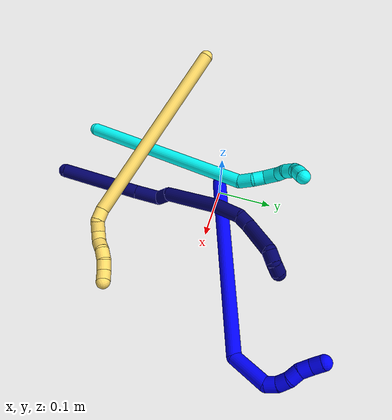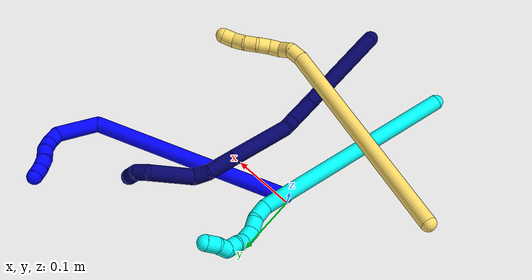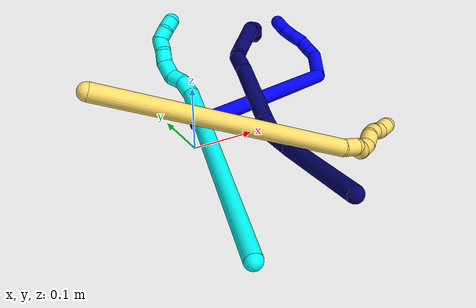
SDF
<sdf version="1.7">
 <world name="default">
  <model name="1">
   <static>0</static>
   <link name="1">
    <collision name="collision-cylinder-e_1_1_4">
     <pose>0.090109 0.019213 0.137033 -0.139298 0.577221 -0.041419</pose>
     <geometry><cylinder><radius>0.0125</radius><length>0.330253</length></cylinder></geometry>
     <surface>
      <friction><ode><mu>1.16</mu><mu2>1.16</mu2><slip1>0</slip1><slip2>0</slip2></ode></friction>
      <contact><ode><kp>1e+06</kp><kd>1</kd><max_vel>0</max_vel><min_depth>0.001</min_depth></ode></contact>
     </surface>
    </collision>
    <visual name="visual-cylinder-e_1_1_4">
     <pose>0.090109 0.019213 0.137033 -0.139298 0.577221 -0.041419</pose>
     <geometry><cylinder><radius>0.0125</radius><length>0.330253</length></cylinder></geometry>
     <material><ambient>0 0 1 1</ambient></material>
    </visual>
    <collision name="collision-cylinder-e_2_4_5">
     <pose>0.20441 0.020846 0.29007 0.832246 0.794103 0.366465</pose>
     <geometry><cylinder><radius>0.0125</radius><length>0.067836</length></cylinder></geometry>
     <surface>
      <friction><ode><mu>1.16</mu><mu2>1.16</mu2><slip1>0</slip1><slip2>0</slip2></ode></friction>
      <contact><ode><kp>1e+06</kp><kd>1</kd><max_vel>0</max_vel><min_depth>0.001</min_depth></ode></contact>
     </surface>
    </collision>
    <visual name="visual-cylinder-e_2_4_5">
     <pose>0.20441 0.020846 0.29007 0.832246 0.794103 0.366465</pose>
     <geometry><cylinder><radius>0.0125</radius><length>0.067836</length></cylinder></geometry>
     <material><ambient>0 0 1 1</ambient></material>
    </visual>
    <collision name="collision-cylinder-e_3_5_6">
     <pose>0.234418 -0.005174 0.304811 1.7195 0.598228 0.687575</pose>
     <geometry><cylinder><radius>0.0125</radius><length>0.020657</length></cylinder></geometry>
     <surface>
      <friction><ode><mu>1.16</mu><mu2>1.16</mu2><slip1>0</slip1><slip2>0</slip2></ode></friction>
      <contact><ode><kp>1e+06</kp><kd>1</kd><max_vel>0</max_vel><min_depth>0.001</min_depth></ode></contact>
     </surface>
    </collision>
    <visual name="visual-cylinder-e_3_5_6">
     <pose>0.234418 -0.005174 0.304811 1.7195 0.598228 0.687575</pose>
     <geometry><cylinder><radius>0.0125</radius><length>0.020657</length></cylinder></geometry>
     <material><ambient>0 0 1 1</ambient></material>
    </visual>
    <collision name="collision-cylinder-e_4_6_7">
     <pose>0.245725 -0.02079 0.298716 2.16326 0.56563 0.999417</pose>
     <geometry><cylinder><radius>0.0125</radius><length>0.02049</length></cylinder></geometry>
     <surface>
      <friction><ode><mu>1.16</mu><mu2>1.16</mu2><slip1>0</slip1><slip2>0</slip2></ode></friction>
      <contact><ode><kp>1e+06</kp><kd>1</kd><max_vel>0</max_vel><min_depth>0.001</min_depth></ode></contact>
     </surface>
    </collision>
    <visual name="visual-cylinder-e_4_6_7">
     <pose>0.245725 -0.02079 0.298716 2.16326 0.56563 0.999417</pose>
     <geometry><cylinder><radius>0.0125</radius><length>0.02049</length></cylinder></geometry>
     <material><ambient>0 0 1 1</ambient></material>
    </visual>
    <collision name="collision-cylinder-e_5_7_8">
     <pose>0.253654 -0.035537 0.287605 2.26327 0.242904 0.508404</pose>
     <geometry><cylinder><radius>0.0125</radius><length>0.020272</length></cylinder></geometry>
     <surface>
      <friction><ode><mu>1.16</mu><mu2>1.16</mu2><slip1>0</slip1><slip2>0</slip2></ode></friction>
      <contact><ode><kp>1e+06</kp><kd>1</kd><max_vel>0</max_vel><min_depth>0.001</min_depth></ode></contact>
     </surface>
    </collision>
    <visual name="visual-cylinder-e_5_7_8">
     <pose>0.253654 -0.035537 0.287605 2.26327 0.242904 0.508404</pose>
     <geometry><cylinder><radius>0.0125</radius><length>0.020272</length></cylinder></geometry>
     <material><ambient>0 0 1 1</ambient></material>
    </visual>
    <collision name="collision-cylinder-e_6_8_9">
     <pose>0.260055 -0.05172 0.277571 1.98182 0.39932 0.599274</pose>
     <geometry><cylinder><radius>0.0125</radius><length>0.020388</length></cylinder></geometry>
     <surface>
      <friction><ode><mu>1.16</mu><mu2>1.16</mu2><slip1>0</slip1><slip2>0</slip2></ode></friction>
      <contact><ode><kp>1e+06</kp><kd>1</kd><max_vel>0</max_vel><min_depth>0.001</min_depth></ode></contact>
     </surface>
    </collision>
    <visual name="visual-cylinder-e_6_8_9">
     <pose>0.260055 -0.05172 0.277571 1.98182 0.39932 0.599274</pose>
     <geometry><cylinder><radius>0.0125</radius><length>0.020388</length></cylinder></geometry>
     <material><ambient>0 0 1 1</ambient></material>
    </visual>
    <collision name="collision-cylinder-e_7_9_2">
     <pose>0.269637 -0.067724 0.269972 2.0505 0.593061 0.932674</pose>
     <geometry><cylinder><radius>0.0125</radius><length>0.020104</length></cylinder></geometry>
     <surface>
      <friction><ode><mu>1.16</mu><mu2>1.16</mu2><slip1>0</slip1><slip2>0</slip2></ode></friction>
      <contact><ode><kp>1e+06</kp><kd>1</kd><max_vel>0</max_vel><min_depth>0.001</min_depth></ode></contact>
     </surface>
    </collision>
    <visual name="visual-cylinder-e_7_9_2">
     <pose>0.269637 -0.067724 0.269972 2.0505 0.593061 0.932674</pose>
     <geometry><cylinder><radius>0.0125</radius><length>0.020104</length></cylinder></geometry>
     <material><ambient>0 0 1 1</ambient></material>
    </visual>
    <collision name="collision-sphere-2">
     <pose>0.275255 -0.075119 0.266125 0 -0 0</pose>
     <geometry><sphere><radius>0.0125</radius></sphere></geometry>
     <surface>
      <friction><ode><mu>1.16</mu><mu2>1.16</mu2><slip1>0</slip1><slip2>0</slip2></ode></friction>
      <contact><ode><kp>1e+06</kp><kd>1</kd><max_vel>0</max_vel><min_depth>0.001</min_depth></ode></contact>
     </surface>
    </collision>
    <visual name="visual-sphere-2">
     <pose>0.275255 -0.075119 0.266125 0 -0 0</pose>
     <geometry><sphere><radius>0.0125</radius></sphere></geometry>
     <material><ambient>0 0 1 1</ambient></material>
    </visual>
    <collision name="collision-sphere-9">
     <pose>0.264019 -0.060329 0.273819 0 -0 0</pose>
     <geometry><sphere><radius>0.0125</radius></sphere></geometry>
     <surface>
      <friction><ode><mu>1.16</mu><mu2>1.16</mu2><slip1>0</slip1><slip2>0</slip2></ode></friction>
      <contact><ode><kp>1e+06</kp><kd>1</kd><max_vel>0</max_vel><min_depth>0.001</min_depth></ode></contact>
     </surface>
    </collision>
    <visual name="visual-sphere-9">
     <pose>0.264019 -0.060329 0.273819 0 -0 0</pose>
     <geometry><sphere><radius>0.0125</radius></sphere></geometry>
     <material><ambient>0 0 1 1</ambient></material>
    </visual>
    <collision name="collision-sphere-4">
     <pose>0.180218 0.038426 0.274066 0 -0 0</pose>
     <geometry><sphere><radius>0.0125</radius></sphere></geometry>
     <surface>
      <friction><ode><mu>1.16</mu><mu2>1.16</mu2><slip1>0</slip1><slip2>0</slip2></ode></friction>
      <contact><ode><kp>1e+06</kp><kd>1</kd><max_vel>0</max_vel><min_depth>0.001</min_depth></ode></contact>
     </surface>
    </collision>
    <visual name="visual-sphere-4">
     <pose>0.180218 0.038426 0.274066 0 -0 0</pose>
     <geometry><sphere><radius>0.0125</radius></sphere></geometry>
     <material><ambient>0 0 1 1</ambient></material>
    </visual>
    <collision name="collision-sphere-1">
     <geometry><sphere><radius>0.0125</radius></sphere></geometry>
     <surface>
      <friction><ode><mu>1.16</mu><mu2>1.16</mu2><slip1>0</slip1><slip2>0</slip2></ode></friction>
      <contact><ode><kp>1e+06</kp><kd>1</kd><max_vel>0</max_vel><min_depth>0.001</min_depth></ode></contact>
     </surface>
    </collision>
    <visual name="visual-sphere-1">
     <geometry><sphere><radius>0.0125</radius></sphere></geometry>
     <material><ambient>0 0 1 1</ambient></material>
    </visual>
    <collision name="collision-sphere-8">
     <pose>0.256092 -0.04311 0.281324 0 -0 0</pose>
     <geometry><sphere><radius>0.0125</radius></sphere></geometry>
     <surface>
      <friction><ode><mu>1.16</mu><mu2>1.16</mu2><slip1>0</slip1><slip2>0</slip2></ode></friction>
      <contact><ode><kp>1e+06</kp><kd>1</kd><max_vel>0</max_vel><min_depth>0.001</min_depth></ode></contact>
     </surface>
    </collision>
    <visual name="visual-sphere-8">
     <pose>0.256092 -0.04311 0.281324 0 -0 0</pose>
     <geometry><sphere><radius>0.0125</radius></sphere></geometry>
     <material><ambient>0 0 1 1</ambient></material>
    </visual>
    <collision name="collision-sphere-5">
     <pose>0.228601 0.003267 0.306075 0 -0 0</pose>
     <geometry><sphere><radius>0.0125</radius></sphere></geometry>
     <surface>
      <friction><ode><mu>1.16</mu><mu2>1.16</mu2><slip1>0</slip1><slip2>0</slip2></ode></friction>
      <contact><ode><kp>1e+06</kp><kd>1</kd><max_vel>0</max_vel><min_depth>0.001</min_depth></ode></contact>
     </surface>
    </collision>
    <visual name="visual-sphere-5">
     <pose>0.228601 0.003267 0.306075 0 -0 0</pose>
     <geometry><sphere><radius>0.0125</radius></sphere></geometry>
     <material><ambient>0 0 1 1</ambient></material>
    </visual>
    <collision name="collision-sphere-6">
     <pose>0.240235 -0.013615 0.303546 0 -0 0</pose>
     <geometry><sphere><radius>0.0125</radius></sphere></geometry>
     <surface>
      <friction><ode><mu>1.16</mu><mu2>1.16</mu2><slip1>0</slip1><slip2>0</slip2></ode></friction>
      <contact><ode><kp>1e+06</kp><kd>1</kd><max_vel>0</max_vel><min_depth>0.001</min_depth></ode></contact>
     </surface>
    </collision>
    <visual name="visual-sphere-6">
     <pose>0.240235 -0.013615 0.303546 0 -0 0</pose>
     <geometry><sphere><radius>0.0125</radius></sphere></geometry>
     <material><ambient>0 0 1 1</ambient></material>
    </visual>
    <collision name="collision-sphere-7">
     <pose>0.251216 -0.027965 0.293887 0 -0 0</pose>
     <geometry><sphere><radius>0.0125</radius></sphere></geometry>
     <surface>
      <friction><ode><mu>1.16</mu><mu2>1.16</mu2><slip1>0</slip1><slip2>0</slip2></ode></friction>
      <contact><ode><kp>1e+06</kp><kd>1</kd><max_vel>0</max_vel><min_depth>0.001</min_depth></ode></contact>
     </surface>
    </collision>
    <visual name="visual-sphere-7">
     <pose>0.251216 -0.027965 0.293887 0 -0 0</pose>
     <geometry><sphere><radius>0.0125</radius></sphere></geometry>
     <material><ambient>0 0 1 1</ambient></material>
    </visual>
    <inertial>
     <pose>0.138735 0.00818 0.188534 0 -0 0</pose>
     <mass>0.5</mass>
     <inertia>
      <ixx>0.002476</ixx>
      <ixy>0</ixy>
      <ixz>0</ixz>
      <iyy>0.002917</iyy>
      <iyz>0</iyz>
      <izz>-0.001978</izz>
     </inertia>
    </inertial>
   </link>
   <pose>0.006616 -0.000606 0.041403 3.02345 -0.885798 0.560304</pose>
  </model>
  <model name="3">
   <static>0</static>
   <link name="3">
    <collision name="collision-cylinder-e_1_1_4">
     <pose>0.001794 0.045389 -0.165852 -2.87446 0.010436 -0.077627</pose>
     <geometry><cylinder><radius>0.0125</radius><length>0.34392</length></cylinder></geometry>
     <surface>
      <friction><ode><mu>1.16</mu><mu2>1.16</mu2><slip1>0</slip1><slip2>0</slip2></ode></friction>
      <contact><ode><kp>1e+06</kp><kd>1</kd><max_vel>0</max_vel><min_depth>0.001</min_depth></ode></contact>
     </surface>
    </collision>
    <visual name="visual-cylinder-e_1_1_4">
     <pose>0.001794 0.045389 -0.165852 -2.87446 0.010436 -0.077627</pose>
     <geometry><cylinder><radius>0.0125</radius><length>0.34392</length></cylinder></geometry>
     <material><ambient>0.003922 1 0.996078 1</ambient></material>
    </visual>
    <collision name="collision-cylinder-e_2_4_5">
     <pose>0.000135 0.098575 -0.342297 -2.50716 -0.256774 0.74931</pose>
     <geometry><cylinder><radius>0.0125</radius><length>0.027199</length></cylinder></geometry>
     <surface>
      <friction><ode><mu>1.16</mu><mu2>1.16</mu2><slip1>0</slip1><slip2>0</slip2></ode></friction>
      <contact><ode><kp>1e+06</kp><kd>1</kd><max_vel>0</max_vel><min_depth>0.001</min_depth></ode></contact>
     </surface>
    </collision>
    <visual name="visual-cylinder-e_2_4_5">
     <pose>0.000135 0.098575 -0.342297 -2.50716 -0.256774 0.74931</pose>
     <geometry><cylinder><radius>0.0125</radius><length>0.027199</length></cylinder></geometry>
     <material><ambient>0.003922 1 0.996078 1</ambient></material>
    </visual>
    <collision name="collision-cylinder-e_3_5_6">
     <pose>-0.009731 0.110039 -0.360492 -2.69192 -0.649716 1.94851</pose>
     <geometry><cylinder><radius>0.0125</radius><length>0.021198</length></cylinder></geometry>
     <surface>
      <friction><ode><mu>1.16</mu><mu2>1.16</mu2><slip1>0</slip1><slip2>0</slip2></ode></friction>
      <contact><ode><kp>1e+06</kp><kd>1</kd><max_vel>0</max_vel><min_depth>0.001</min_depth></ode></contact>
     </surface>
    </collision>
    <visual name="visual-cylinder-e_3_5_6">
     <pose>-0.009731 0.110039 -0.360492 -2.69192 -0.649716 1.94851</pose>
     <geometry><cylinder><radius>0.0125</radius><length>0.021198</length></cylinder></geometry>
     <material><ambient>0.003922 1 0.996078 1</ambient></material>
    </visual>
    <collision name="collision-cylinder-e_4_6_7">
     <pose>-0.018675 0.123045 -0.377662 -2.36848 -0.187204 0.453341</pose>
     <geometry><cylinder><radius>0.0125</radius><length>0.027216</length></cylinder></geometry>
     <surface>
      <friction><ode><mu>1.16</mu><mu2>1.16</mu2><slip1>0</slip1><slip2>0</slip2></ode></friction>
      <contact><ode><kp>1e+06</kp><kd>1</kd><max_vel>0</max_vel><min_depth>0.001</min_depth></ode></contact>
     </surface>
    </collision>
    <visual name="visual-cylinder-e_4_6_7">
     <pose>-0.018675 0.123045 -0.377662 -2.36848 -0.187204 0.453341</pose>
     <geometry><cylinder><radius>0.0125</radius><length>0.027216</length></cylinder></geometry>
     <material><ambient>0.003922 1 0.996078 1</ambient></material>
    </visual>
    <collision name="collision-cylinder-e_5_7_8">
     <pose>-0.01962 0.141028 -0.392069 -2.08094 0.158905 -0.269925</pose>
     <geometry><cylinder><radius>0.0125</radius><length>0.020067</length></cylinder></geometry>
     <surface>
      <friction><ode><mu>1.16</mu><mu2>1.16</mu2><slip1>0</slip1><slip2>0</slip2></ode></friction>
      <contact><ode><kp>1e+06</kp><kd>1</kd><max_vel>0</max_vel><min_depth>0.001</min_depth></ode></contact>
     </surface>
    </collision>
    <visual name="visual-cylinder-e_5_7_8">
     <pose>-0.01962 0.141028 -0.392069 -2.08094 0.158905 -0.269925</pose>
     <geometry><cylinder><radius>0.0125</radius><length>0.020067</length></cylinder></geometry>
     <material><ambient>0.003922 1 0.996078 1</ambient></material>
    </visual>
    <collision name="collision-cylinder-e_6_8_9">
     <pose>-0.017817 0.156439 -0.40435 -2.40385 0.021427 -0.055417</pose>
     <geometry><cylinder><radius>0.0125</radius><length>0.020122</length></cylinder></geometry>
     <surface>
      <friction><ode><mu>1.16</mu><mu2>1.16</mu2><slip1>0</slip1><slip2>0</slip2></ode></friction>
      <contact><ode><kp>1e+06</kp><kd>1</kd><max_vel>0</max_vel><min_depth>0.001</min_depth></ode></contact>
     </surface>
    </collision>
    <visual name="visual-cylinder-e_6_8_9">
     <pose>-0.017817 0.156439 -0.40435 -2.40385 0.021427 -0.055417</pose>
     <geometry><cylinder><radius>0.0125</radius><length>0.020122</length></cylinder></geometry>
     <material><ambient>0.003922 1 0.996078 1</ambient></material>
    </visual>
    <collision name="collision-cylinder-e_7_9_10">
     <pose>-0.010904 0.169585 -0.415737 -2.12441 0.728841 -1.20011</pose>
     <geometry><cylinder><radius>0.0125</radius><length>0.020111</length></cylinder></geometry>
     <surface>
      <friction><ode><mu>1.16</mu><mu2>1.16</mu2><slip1>0</slip1><slip2>0</slip2></ode></friction>
      <contact><ode><kp>1e+06</kp><kd>1</kd><max_vel>0</max_vel><min_depth>0.001</min_depth></ode></contact>
     </surface>
    </collision>
    <visual name="visual-cylinder-e_7_9_10">
     <pose>-0.010904 0.169585 -0.415737 -2.12441 0.728841 -1.20011</pose>
     <geometry><cylinder><radius>0.0125</radius><length>0.020111</length></cylinder></geometry>
     <material><ambient>0.003922 1 0.996078 1</ambient></material>
    </visual>
    <collision name="collision-cylinder-e_8_10_2">
     <pose>0.00224 0.180106 -0.426236 -2.57826 0.693664 -1.79142</pose>
     <geometry><cylinder><radius>0.0125</radius><length>0.020168</length></cylinder></geometry>
     <surface>
      <friction><ode><mu>1.16</mu><mu2>1.16</mu2><slip1>0</slip1><slip2>0</slip2></ode></friction>
      <contact><ode><kp>1e+06</kp><kd>1</kd><max_vel>0</max_vel><min_depth>0.001</min_depth></ode></contact>
     </surface>
    </collision>
    <visual name="visual-cylinder-e_8_10_2">
     <pose>0.00224 0.180106 -0.426236 -2.57826 0.693664 -1.79142</pose>
     <geometry><cylinder><radius>0.0125</radius><length>0.020168</length></cylinder></geometry>
     <material><ambient>0.003922 1 0.996078 1</ambient></material>
    </visual>
    <collision name="collision-sphere-2">
     <pose>0.008687 0.184247 -0.432792 0 -0 0</pose>
     <geometry><sphere><radius>0.0125</radius></sphere></geometry>
     <surface>
      <friction><ode><mu>1.16</mu><mu2>1.16</mu2><slip1>0</slip1><slip2>0</slip2></ode></friction>
      <contact><ode><kp>1e+06</kp><kd>1</kd><max_vel>0</max_vel><min_depth>0.001</min_depth></ode></contact>
     </surface>
    </collision>
    <visual name="visual-sphere-2">
     <pose>0.008687 0.184247 -0.432792 0 -0 0</pose>
     <geometry><sphere><radius>0.0125</radius></sphere></geometry>
     <material><ambient>0.003922 1 0.996078 1</ambient></material>
    </visual>
    <collision name="collision-sphere-10">
     <pose>-0.004207 0.175966 -0.419681 0 -0 0</pose>
     <geometry><sphere><radius>0.0125</radius></sphere></geometry>
     <surface>
      <friction><ode><mu>1.16</mu><mu2>1.16</mu2><slip1>0</slip1><slip2>0</slip2></ode></friction>
      <contact><ode><kp>1e+06</kp><kd>1</kd><max_vel>0</max_vel><min_depth>0.001</min_depth></ode></contact>
     </surface>
    </collision>
    <visual name="visual-sphere-10">
     <pose>-0.004207 0.175966 -0.419681 0 -0 0</pose>
     <geometry><sphere><radius>0.0125</radius></sphere></geometry>
     <material><ambient>0.003922 1 0.996078 1</ambient></material>
    </visual>
    <collision name="collision-sphere-9">
     <pose>-0.017601 0.163205 -0.411794 0 -0 0</pose>
     <geometry><sphere><radius>0.0125</radius></sphere></geometry>
     <surface>
      <friction><ode><mu>1.16</mu><mu2>1.16</mu2><slip1>0</slip1><slip2>0</slip2></ode></friction>
      <contact><ode><kp>1e+06</kp><kd>1</kd><max_vel>0</max_vel><min_depth>0.001</min_depth></ode></contact>
     </surface>
    </collision>
    <visual name="visual-sphere-9">
     <pose>-0.017601 0.163205 -0.411794 0 -0 0</pose>
     <geometry><sphere><radius>0.0125</radius></sphere></geometry>
     <material><ambient>0.003922 1 0.996078 1</ambient></material>
    </visual>
    <collision name="collision-sphere-4">
     <pose>0.003589 0.090778 -0.331704 0 -0 0</pose>
     <geometry><sphere><radius>0.0125</radius></sphere></geometry>
     <surface>
      <friction><ode><mu>1.16</mu><mu2>1.16</mu2><slip1>0</slip1><slip2>0</slip2></ode></friction>
      <contact><ode><kp>1e+06</kp><kd>1</kd><max_vel>0</max_vel><min_depth>0.001</min_depth></ode></contact>
     </surface>
    </collision>
    <visual name="visual-sphere-4">
     <pose>0.003589 0.090778 -0.331704 0 -0 0</pose>
     <geometry><sphere><radius>0.0125</radius></sphere></geometry>
     <material><ambient>0.003922 1 0.996078 1</ambient></material>
    </visual>
    <collision name="collision-sphere-1">
     <geometry><sphere><radius>0.0125</radius></sphere></geometry>
     <surface>
      <friction><ode><mu>1.16</mu><mu2>1.16</mu2><slip1>0</slip1><slip2>0</slip2></ode></friction>
      <contact><ode><kp>1e+06</kp><kd>1</kd><max_vel>0</max_vel><min_depth>0.001</min_depth></ode></contact>
     </surface>
    </collision>
    <visual name="visual-sphere-1">
     <geometry><sphere><radius>0.0125</radius></sphere></geometry>
     <material><ambient>0.003922 1 0.996078 1</ambient></material>
    </visual>
    <collision name="collision-sphere-8">
     <pose>-0.018032 0.149673 -0.396907 0 -0 0</pose>
     <geometry><sphere><radius>0.0125</radius></sphere></geometry>
     <surface>
      <friction><ode><mu>1.16</mu><mu2>1.16</mu2><slip1>0</slip1><slip2>0</slip2></ode></friction>
      <contact><ode><kp>1e+06</kp><kd>1</kd><max_vel>0</max_vel><min_depth>0.001</min_depth></ode></contact>
     </surface>
    </collision>
    <visual name="visual-sphere-8">
     <pose>-0.018032 0.149673 -0.396907 0 -0 0</pose>
     <geometry><sphere><radius>0.0125</radius></sphere></geometry>
     <material><ambient>0.003922 1 0.996078 1</ambient></material>
    </visual>
    <collision name="collision-sphere-5">
     <pose>-0.003318 0.106371 -0.352891 0 -0 0</pose>
     <geometry><sphere><radius>0.0125</radius></sphere></geometry>
     <surface>
      <friction><ode><mu>1.16</mu><mu2>1.16</mu2><slip1>0</slip1><slip2>0</slip2></ode></friction>
      <contact><ode><kp>1e+06</kp><kd>1</kd><max_vel>0</max_vel><min_depth>0.001</min_depth></ode></contact>
     </surface>
    </collision>
    <visual name="visual-sphere-5">
     <pose>-0.003318 0.106371 -0.352891 0 -0 0</pose>
     <geometry><sphere><radius>0.0125</radius></sphere></geometry>
     <material><ambient>0.003922 1 0.996078 1</ambient></material>
    </visual>
    <collision name="collision-sphere-6">
     <pose>-0.016143 0.113708 -0.368093 0 -0 0</pose>
     <geometry><sphere><radius>0.0125</radius></sphere></geometry>
     <surface>
      <friction><ode><mu>1.16</mu><mu2>1.16</mu2><slip1>0</slip1><slip2>0</slip2></ode></friction>
      <contact><ode><kp>1e+06</kp><kd>1</kd><max_vel>0</max_vel><min_depth>0.001</min_depth></ode></contact>
     </surface>
    </collision>
    <visual name="visual-sphere-6">
     <pose>-0.016143 0.113708 -0.368093 0 -0 0</pose>
     <geometry><sphere><radius>0.0125</radius></sphere></geometry>
     <material><ambient>0.003922 1 0.996078 1</ambient></material>
    </visual>
    <collision name="collision-sphere-7">
     <pose>-0.021208 0.132382 -0.387232 0 -0 0</pose>
     <geometry><sphere><radius>0.0125</radius></sphere></geometry>
     <surface>
      <friction><ode><mu>1.16</mu><mu2>1.16</mu2><slip1>0</slip1><slip2>0</slip2></ode></friction>
      <contact><ode><kp>1e+06</kp><kd>1</kd><max_vel>0</max_vel><min_depth>0.001</min_depth></ode></contact>
     </surface>
    </collision>
    <visual name="visual-sphere-7">
     <pose>-0.021208 0.132382 -0.387232 0 -0 0</pose>
     <geometry><sphere><radius>0.0125</radius></sphere></geometry>
     <material><ambient>0.003922 1 0.996078 1</ambient></material>
    </visual>
    <inertial>
     <pose>-0.00204 0.073987 -0.234462 0 -0 0</pose>
     <mass>0.5</mass>
     <inertia>
      <ixx>0.003138</ixx>
      <ixy>0</ixy>
      <ixz>0</ixz>
      <iyy>-0.003522</iyy>
      <iyz>0</iyz>
      <izz>-0.000975</izz>
     </inertia>
    </inertial>
   </link>
   <pose>-0.072547 -0.288502 0.011497 1.48419 -0.165259 -0.284235</pose>
  </model>
  <model name="5">
   <static>0</static>
   <link name="5">
    <collision name="collision-cylinder-e_1_1_4">
     <pose>0.069258 0.100115 0.12875 -0.660928 0.401577 -0.139414</pose>
     <geometry><cylinder><radius>0.0125</radius><length>0.35438</length></cylinder></geometry>
     <surface>
      <friction><ode><mu>1.16</mu><mu2>1.16</mu2><slip1>0</slip1><slip2>0</slip2></ode></friction>
      <contact><ode><kp>1e+06</kp><kd>1</kd><max_vel>0</max_vel><min_depth>0.001</min_depth></ode></contact>
     </surface>
    </collision>
    <visual name="visual-cylinder-e_1_1_4">
     <pose>0.069258 0.100115 0.12875 -0.660928 0.401577 -0.139414</pose>
     <geometry><cylinder><radius>0.0125</radius><length>0.35438</length></cylinder></geometry>
     <material><ambient>1 0.858824 0.4 1</ambient></material>
    </visual>
    <collision name="collision-cylinder-e_2_4_5">
     <pose>0.139763 0.207896 0.26582 -0.744541 0.10975 -0.042891</pose>
     <geometry><cylinder><radius>0.0125</radius><length>0.022763</length></cylinder></geometry>
     <surface>
      <friction><ode><mu>1.16</mu><mu2>1.16</mu2><slip1>0</slip1><slip2>0</slip2></ode></friction>
      <contact><ode><kp>1e+06</kp><kd>1</kd><max_vel>0</max_vel><min_depth>0.001</min_depth></ode></contact>
     </surface>
    </collision>
    <visual name="visual-cylinder-e_2_4_5">
     <pose>0.139763 0.207896 0.26582 -0.744541 0.10975 -0.042891</pose>
     <geometry><cylinder><radius>0.0125</radius><length>0.022763</length></cylinder></geometry>
     <material><ambient>1 0.858824 0.4 1</ambient></material>
    </visual>
    <collision name="collision-cylinder-e_3_5_6">
     <pose>0.143502 0.225508 0.276339 -1.35315 0.239967 -0.193025</pose>
     <geometry><cylinder><radius>0.0125</radius><length>0.020972</length></cylinder></geometry>
     <surface>
      <friction><ode><mu>1.16</mu><mu2>1.16</mu2><slip1>0</slip1><slip2>0</slip2></ode></friction>
      <contact><ode><kp>1e+06</kp><kd>1</kd><max_vel>0</max_vel><min_depth>0.001</min_depth></ode></contact>
     </surface>
    </collision>
    <visual name="visual-cylinder-e_3_5_6">
     <pose>0.143502 0.225508 0.276339 -1.35315 0.239967 -0.193025</pose>
     <geometry><cylinder><radius>0.0125</radius><length>0.020972</length></cylinder></geometry>
     <material><ambient>1 0.858824 0.4 1</ambient></material>
    </visual>
    <collision name="collision-cylinder-e_4_6_7">
     <pose>0.142829 0.243814 0.283568 -1.02921 -0.313704 0.17837</pose>
     <geometry><cylinder><radius>0.0125</radius><length>0.020516</length></cylinder></geometry>
     <surface>
      <friction><ode><mu>1.16</mu><mu2>1.16</mu2><slip1>0</slip1><slip2>0</slip2></ode></friction>
      <contact><ode><kp>1e+06</kp><kd>1</kd><max_vel>0</max_vel><min_depth>0.001</min_depth></ode></contact>
     </surface>
    </collision>
    <visual name="visual-cylinder-e_4_6_7">
     <pose>0.142829 0.243814 0.283568 -1.02921 -0.313704 0.17837</pose>
     <geometry><cylinder><radius>0.0125</radius><length>0.020516</length></cylinder></geometry>
     <material><ambient>1 0.858824 0.4 1</ambient></material>
    </visual>
    <collision name="collision-cylinder-e_5_7_8">
     <pose>0.132832 0.258754 0.293005 -0.980552 -0.711796 0.391726</pose>
     <geometry><cylinder><radius>0.0125</radius><length>0.020917</length></cylinder></geometry>
     <surface>
      <friction><ode><mu>1.16</mu><mu2>1.16</mu2><slip1>0</slip1><slip2>0</slip2></ode></friction>
      <contact><ode><kp>1e+06</kp><kd>1</kd><max_vel>0</max_vel><min_depth>0.001</min_depth></ode></contact>
     </surface>
    </collision>
    <visual name="visual-cylinder-e_5_7_8">
     <pose>0.132832 0.258754 0.293005 -0.980552 -0.711796 0.391726</pose>
     <geometry><cylinder><radius>0.0125</radius><length>0.020917</length></cylinder></geometry>
     <material><ambient>1 0.858824 0.4 1</ambient></material>
    </visual>
    <collision name="collision-cylinder-e_6_8_9">
     <pose>0.122881 0.27406 0.301351 -1.14692 -0.31497 0.204411</pose>
     <geometry><cylinder><radius>0.0125</radius><length>0.020139</length></cylinder></geometry>
     <surface>
      <friction><ode><mu>1.16</mu><mu2>1.16</mu2><slip1>0</slip1><slip2>0</slip2></ode></friction>
      <contact><ode><kp>1e+06</kp><kd>1</kd><max_vel>0</max_vel><min_depth>0.001</min_depth></ode></contact>
     </surface>
    </collision>
    <visual name="visual-cylinder-e_6_8_9">
     <pose>0.122881 0.27406 0.301351 -1.14692 -0.31497 0.204411</pose>
     <geometry><cylinder><radius>0.0125</radius><length>0.020139</length></cylinder></geometry>
     <material><ambient>1 0.858824 0.4 1</ambient></material>
    </visual>
    <collision name="collision-cylinder-e_7_9_10">
     <pose>0.11967 0.2918 0.309641 -1.12095 -0.009104 0.005714</pose>
     <geometry><cylinder><radius>0.0125</radius><length>0.020018</length></cylinder></geometry>
     <surface>
      <friction><ode><mu>1.16</mu><mu2>1.16</mu2><slip1>0</slip1><slip2>0</slip2></ode></friction>
      <contact><ode><kp>1e+06</kp><kd>1</kd><max_vel>0</max_vel><min_depth>0.001</min_depth></ode></contact>
     </surface>
    </collision>
    <visual name="visual-cylinder-e_7_9_10">
     <pose>0.11967 0.2918 0.309641 -1.12095 -0.009104 0.005714</pose>
     <geometry><cylinder><radius>0.0125</radius><length>0.020018</length></cylinder></geometry>
     <material><ambient>1 0.858824 0.4 1</ambient></material>
    </visual>
    <collision name="collision-cylinder-e_8_10_2">
     <pose>0.116474 0.308068 0.320371 -0.849587 -0.311046 0.141605</pose>
     <geometry><cylinder><radius>0.0125</radius><length>0.020294</length></cylinder></geometry>
     <surface>
      <friction><ode><mu>1.16</mu><mu2>1.16</mu2><slip1>0</slip1><slip2>0</slip2></ode></friction>
      <contact><ode><kp>1e+06</kp><kd>1</kd><max_vel>0</max_vel><min_depth>0.001</min_depth></ode></contact>
     </surface>
    </collision>
    <visual name="visual-cylinder-e_8_10_2">
     <pose>0.116474 0.308068 0.320371 -0.849587 -0.311046 0.141605</pose>
     <geometry><cylinder><radius>0.0125</radius><length>0.020294</length></cylinder></geometry>
     <material><ambient>1 0.858824 0.4 1</ambient></material>
    </visual>
    <collision name="collision-sphere-2">
     <pose>0.113368 0.315323 0.32675 0 -0 0</pose>
     <geometry><sphere><radius>0.0125</radius></sphere></geometry>
     <surface>
      <friction><ode><mu>1.16</mu><mu2>1.16</mu2><slip1>0</slip1><slip2>0</slip2></ode></friction>
      <contact><ode><kp>1e+06</kp><kd>1</kd><max_vel>0</max_vel><min_depth>0.001</min_depth></ode></contact>
     </surface>
    </collision>
    <visual name="visual-sphere-2">
     <pose>0.113368 0.315323 0.32675 0 -0 0</pose>
     <geometry><sphere><radius>0.0125</radius></sphere></geometry>
     <material><ambient>1 0.858824 0.4 1</ambient></material>
    </visual>
    <collision name="collision-sphere-10">
     <pose>0.119579 0.300813 0.313993 0 -0 0</pose>
     <geometry><sphere><radius>0.0125</radius></sphere></geometry>
     <surface>
      <friction><ode><mu>1.16</mu><mu2>1.16</mu2><slip1>0</slip1><slip2>0</slip2></ode></friction>
      <contact><ode><kp>1e+06</kp><kd>1</kd><max_vel>0</max_vel><min_depth>0.001</min_depth></ode></contact>
     </surface>
    </collision>
    <visual name="visual-sphere-10">
     <pose>0.119579 0.300813 0.313993 0 -0 0</pose>
     <geometry><sphere><radius>0.0125</radius></sphere></geometry>
     <material><ambient>1 0.858824 0.4 1</ambient></material>
    </visual>
    <collision name="collision-sphere-9">
     <pose>0.119761 0.282787 0.305289 0 -0 0</pose>
     <geometry><sphere><radius>0.0125</radius></sphere></geometry>
     <surface>
      <friction><ode><mu>1.16</mu><mu2>1.16</mu2><slip1>0</slip1><slip2>0</slip2></ode></friction>
      <contact><ode><kp>1e+06</kp><kd>1</kd><max_vel>0</max_vel><min_depth>0.001</min_depth></ode></contact>
     </surface>
    </collision>
    <visual name="visual-sphere-9">
     <pose>0.119761 0.282787 0.305289 0 -0 0</pose>
     <geometry><sphere><radius>0.0125</radius></sphere></geometry>
     <material><ambient>1 0.858824 0.4 1</ambient></material>
    </visual>
    <collision name="collision-sphere-4">
     <pose>0.138517 0.20023 0.2575 0 -0 0</pose>
     <geometry><sphere><radius>0.0125</radius></sphere></geometry>
     <surface>
      <friction><ode><mu>1.16</mu><mu2>1.16</mu2><slip1>0</slip1><slip2>0</slip2></ode></friction>
      <contact><ode><kp>1e+06</kp><kd>1</kd><max_vel>0</max_vel><min_depth>0.001</min_depth></ode></contact>
     </surface>
    </collision>
    <visual name="visual-sphere-4">
     <pose>0.138517 0.20023 0.2575 0 -0 0</pose>
     <geometry><sphere><radius>0.0125</radius></sphere></geometry>
     <material><ambient>1 0.858824 0.4 1</ambient></material>
    </visual>
    <collision name="collision-sphere-1">
     <geometry><sphere><radius>0.0125</radius></sphere></geometry>
     <surface>
      <friction><ode><mu>1.16</mu><mu2>1.16</mu2><slip1>0</slip1><slip2>0</slip2></ode></friction>
      <contact><ode><kp>1e+06</kp><kd>1</kd><max_vel>0</max_vel><min_depth>0.001</min_depth></ode></contact>
     </surface>
    </collision>
    <visual name="visual-sphere-1">
     <geometry><sphere><radius>0.0125</radius></sphere></geometry>
     <material><ambient>1 0.858824 0.4 1</ambient></material>
    </visual>
    <collision name="collision-sphere-8">
     <pose>0.126 0.265334 0.297413 0 -0 0</pose>
     <geometry><sphere><radius>0.0125</radius></sphere></geometry>
     <surface>
      <friction><ode><mu>1.16</mu><mu2>1.16</mu2><slip1>0</slip1><slip2>0</slip2></ode></friction>
      <contact><ode><kp>1e+06</kp><kd>1</kd><max_vel>0</max_vel><min_depth>0.001</min_depth></ode></contact>
     </surface>
    </collision>
    <visual name="visual-sphere-8">
     <pose>0.126 0.265334 0.297413 0 -0 0</pose>
     <geometry><sphere><radius>0.0125</radius></sphere></geometry>
     <material><ambient>1 0.858824 0.4 1</ambient></material>
    </visual>
    <collision name="collision-sphere-5">
     <pose>0.14101 0.215563 0.27414 0 -0 0</pose>
     <geometry><sphere><radius>0.0125</radius></sphere></geometry>
     <surface>
      <friction><ode><mu>1.16</mu><mu2>1.16</mu2><slip1>0</slip1><slip2>0</slip2></ode></friction>
      <contact><ode><kp>1e+06</kp><kd>1</kd><max_vel>0</max_vel><min_depth>0.001</min_depth></ode></contact>
     </surface>
    </collision>
    <visual name="visual-sphere-5">
     <pose>0.14101 0.215563 0.27414 0 -0 0</pose>
     <geometry><sphere><radius>0.0125</radius></sphere></geometry>
     <material><ambient>1 0.858824 0.4 1</ambient></material>
    </visual>
    <collision name="collision-sphere-6">
     <pose>0.145994 0.235453 0.278538 0 -0 0</pose>
     <geometry><sphere><radius>0.0125</radius></sphere></geometry>
     <surface>
      <friction><ode><mu>1.16</mu><mu2>1.16</mu2><slip1>0</slip1><slip2>0</slip2></ode></friction>
      <contact><ode><kp>1e+06</kp><kd>1</kd><max_vel>0</max_vel><min_depth>0.001</min_depth></ode></contact>
     </surface>
    </collision>
    <visual name="visual-sphere-6">
     <pose>0.145994 0.235453 0.278538 0 -0 0</pose>
     <geometry><sphere><radius>0.0125</radius></sphere></geometry>
     <material><ambient>1 0.858824 0.4 1</ambient></material>
    </visual>
    <collision name="collision-sphere-7">
     <pose>0.139663 0.252175 0.288598 0 -0 0</pose>
     <geometry><sphere><radius>0.0125</radius></sphere></geometry>
     <surface>
      <friction><ode><mu>1.16</mu><mu2>1.16</mu2><slip1>0</slip1><slip2>0</slip2></ode></friction>
      <contact><ode><kp>1e+06</kp><kd>1</kd><max_vel>0</max_vel><min_depth>0.001</min_depth></ode></contact>
     </surface>
    </collision>
    <visual name="visual-sphere-7">
     <pose>0.139663 0.252175 0.288598 0 -0 0</pose>
     <geometry><sphere><radius>0.0125</radius></sphere></geometry>
     <material><ambient>1 0.858824 0.4 1</ambient></material>
    </visual>
    <inertial>
     <pose>0.087355 0.145935 0.176377 0 -0 0</pose>
     <mass>0.5</mass>
     <inertia>
      <ixx>0.002937</ixx>
      <ixy>0</ixy>
      <ixz>0</ixz>
      <iyy>0.00259</iyy>
      <iyz>0</iyz>
      <izz>-0.00354</izz>
     </inertia>
    </inertial>
   </link>
   <pose>-0.180762 -0.086744 0.170959 -0.996481 0.841978 -1.65967</pose>
  </model>
  <model name="7">
   <static>0</static>
   <link name="7">
    <collision name="collision-cylinder-e_1_1_4">
     <pose>0.027495 0.029839 -0.060243 -2.6817 0.38823 -1.39711</pose>
     <geometry><cylinder><radius>0.0125</radius><length>0.145266</length></cylinder></geometry>
     <surface>
      <friction><ode><mu>1.16</mu><mu2>1.16</mu2><slip1>0</slip1><slip2>0</slip2></ode></friction>
      <contact><ode><kp>1e+06</kp><kd>1</kd><max_vel>0</max_vel><min_depth>0.001</min_depth></ode></contact>
     </surface>
    </collision>
    <visual name="visual-cylinder-e_1_1_4">
     <pose>0.027495 0.029839 -0.060243 -2.6817 0.38823 -1.39711</pose>
     <geometry><cylinder><radius>0.0125</radius><length>0.145266</length></cylinder></geometry>
     <material><ambient>0.003922 0 0.403922 1</ambient></material>
    </visual>
    <collision name="collision-cylinder-e_2_4_5">
     <pose>0.063073 0.067855 -0.139529 -2.73604 0.371852 -1.48192</pose>
     <geometry><cylinder><radius>0.0125</radius><length>0.04449</length></cylinder></geometry>
     <surface>
      <friction><ode><mu>1.16</mu><mu2>1.16</mu2><slip1>0</slip1><slip2>0</slip2></ode></friction>
      <contact><ode><kp>1e+06</kp><kd>1</kd><max_vel>0</max_vel><min_depth>0.001</min_depth></ode></contact>
     </surface>
    </collision>
    <visual name="visual-cylinder-e_2_4_5">
     <pose>0.063073 0.067855 -0.139529 -2.73604 0.371852 -1.48192</pose>
     <geometry><cylinder><radius>0.0125</radius><length>0.04449</length></cylinder></geometry>
     <material><ambient>0.003922 0 0.403922 1</ambient></material>
    </visual>
    <collision name="collision-cylinder-e_3_5_6">
     <pose>0.073219 0.071853 -0.170396 2.80184 0.163064 0.889139</pose>
     <geometry><cylinder><radius>0.0125</radius><length>0.025417</length></cylinder></geometry>
     <surface>
      <friction><ode><mu>1.16</mu><mu2>1.16</mu2><slip1>0</slip1><slip2>0</slip2></ode></friction>
      <contact><ode><kp>1e+06</kp><kd>1</kd><max_vel>0</max_vel><min_depth>0.001</min_depth></ode></contact>
     </surface>
    </collision>
    <visual name="visual-cylinder-e_3_5_6">
     <pose>0.073219 0.071853 -0.170396 2.80184 0.163064 0.889139</pose>
     <geometry><cylinder><radius>0.0125</radius><length>0.025417</length></cylinder></geometry>
     <material><ambient>0.003922 0 0.403922 1</ambient></material>
    </visual>
    <collision name="collision-cylinder-e_4_6_7">
     <pose>0.078753 0.07559 -0.235198 -2.99326 0.064713 -0.821646</pose>
     <geometry><cylinder><radius>0.0125</radius><length>0.107359</length></cylinder></geometry>
     <surface>
      <friction><ode><mu>1.16</mu><mu2>1.16</mu2><slip1>0</slip1><slip2>0</slip2></ode></friction>
      <contact><ode><kp>1e+06</kp><kd>1</kd><max_vel>0</max_vel><min_depth>0.001</min_depth></ode></contact>
     </surface>
    </collision>
    <visual name="visual-cylinder-e_4_6_7">
     <pose>0.078753 0.07559 -0.235198 -2.99326 0.064713 -0.821646</pose>
     <geometry><cylinder><radius>0.0125</radius><length>0.107359</length></cylinder></geometry>
     <material><ambient>0.003922 0 0.403922 1</ambient></material>
    </visual>
    <collision name="collision-cylinder-e_5_7_8">
     <pose>0.084231 0.09123 -0.307984 -2.7698 0.094073 -0.490505</pose>
     <geometry><cylinder><radius>0.0125</radius><length>0.042708</length></cylinder></geometry>
     <surface>
      <friction><ode><mu>1.16</mu><mu2>1.16</mu2><slip1>0</slip1><slip2>0</slip2></ode></friction>
      <contact><ode><kp>1e+06</kp><kd>1</kd><max_vel>0</max_vel><min_depth>0.001</min_depth></ode></contact>
     </surface>
    </collision>
    <visual name="visual-cylinder-e_5_7_8">
     <pose>0.084231 0.09123 -0.307984 -2.7698 0.094073 -0.490505</pose>
     <geometry><cylinder><radius>0.0125</radius><length>0.042708</length></cylinder></geometry>
     <material><ambient>0.003922 0 0.403922 1</ambient></material>
    </visual>
    <collision name="collision-cylinder-e_6_8_9">
     <pose>0.085335 0.106891 -0.336444 -2.39929 -0.07666 0.196437</pose>
     <geometry><cylinder><radius>0.0125</radius><length>0.023553</length></cylinder></geometry>
     <surface>
      <friction><ode><mu>1.16</mu><mu2>1.16</mu2><slip1>0</slip1><slip2>0</slip2></ode></friction>
      <contact><ode><kp>1e+06</kp><kd>1</kd><max_vel>0</max_vel><min_depth>0.001</min_depth></ode></contact>
     </surface>
    </collision>
    <visual name="visual-cylinder-e_6_8_9">
     <pose>0.085335 0.106891 -0.336444 -2.39929 -0.07666 0.196437</pose>
     <geometry><cylinder><radius>0.0125</radius><length>0.023553</length></cylinder></geometry>
     <material><ambient>0.003922 0 0.403922 1</ambient></material>
    </visual>
    <collision name="collision-cylinder-e_7_9_10">
     <pose>0.067143 0.123714 -0.374542 -2.84852 -0.512126 2.11493</pose>
     <geometry><cylinder><radius>0.0125</radius><length>0.070566</length></cylinder></geometry>
     <surface>
      <friction><ode><mu>1.16</mu><mu2>1.16</mu2><slip1>0</slip1><slip2>0</slip2></ode></friction>
      <contact><ode><kp>1e+06</kp><kd>1</kd><max_vel>0</max_vel><min_depth>0.001</min_depth></ode></contact>
     </surface>
    </collision>
    <visual name="visual-cylinder-e_7_9_10">
     <pose>0.067143 0.123714 -0.374542 -2.84852 -0.512126 2.11493</pose>
     <geometry><cylinder><radius>0.0125</radius><length>0.070566</length></cylinder></geometry>
     <material><ambient>0.003922 0 0.403922 1</ambient></material>
    </visual>
    <collision name="collision-cylinder-e_8_10_11">
     <pose>0.046166 0.14077 -0.409039 -2.12457 -0.366436 0.641868</pose>
     <geometry><cylinder><radius>0.0125</radius><length>0.020581</length></cylinder></geometry>
     <surface>
      <friction><ode><mu>1.16</mu><mu2>1.16</mu2><slip1>0</slip1><slip2>0</slip2></ode></friction>
      <contact><ode><kp>1e+06</kp><kd>1</kd><max_vel>0</max_vel><min_depth>0.001</min_depth></ode></contact>
     </surface>
    </collision>
    <visual name="visual-cylinder-e_8_10_11">
     <pose>0.046166 0.14077 -0.409039 -2.12457 -0.366436 0.641868</pose>
     <geometry><cylinder><radius>0.0125</radius><length>0.020581</length></cylinder></geometry>
     <material><ambient>0.003922 0 0.403922 1</ambient></material>
    </visual>
    <collision name="collision-cylinder-e_9_11_2">
     <pose>0.04367 0.158781 -0.415633 -1.72616 0.119008 -0.139038</pose>
     <geometry><cylinder><radius>0.0125</radius><length>0.02006</length></cylinder></geometry>
     <surface>
      <friction><ode><mu>1.16</mu><mu2>1.16</mu2><slip1>0</slip1><slip2>0</slip2></ode></friction>
      <contact><ode><kp>1e+06</kp><kd>1</kd><max_vel>0</max_vel><min_depth>0.001</min_depth></ode></contact>
     </surface>
    </collision>
    <visual name="visual-cylinder-e_9_11_2">
     <pose>0.04367 0.158781 -0.415633 -1.72616 0.119008 -0.139038</pose>
     <geometry><cylinder><radius>0.0125</radius><length>0.02006</length></cylinder></geometry>
     <material><ambient>0.003922 0 0.403922 1</ambient></material>
    </visual>
    <collision name="collision-sphere-2">
     <pose>0.044861 0.16862 -0.417174 0 -0 0</pose>
     <geometry><sphere><radius>0.0125</radius></sphere></geometry>
     <surface>
      <friction><ode><mu>1.16</mu><mu2>1.16</mu2><slip1>0</slip1><slip2>0</slip2></ode></friction>
      <contact><ode><kp>1e+06</kp><kd>1</kd><max_vel>0</max_vel><min_depth>0.001</min_depth></ode></contact>
     </surface>
    </collision>
    <visual name="visual-sphere-2">
     <pose>0.044861 0.16862 -0.417174 0 -0 0</pose>
     <geometry><sphere><radius>0.0125</radius></sphere></geometry>
     <material><ambient>0.003922 0 0.403922 1</ambient></material>
    </visual>
    <collision name="collision-sphere-11">
     <pose>0.042479 0.148942 -0.414092 0 -0 0</pose>
     <geometry><sphere><radius>0.0125</radius></sphere></geometry>
     <surface>
      <friction><ode><mu>1.16</mu><mu2>1.16</mu2><slip1>0</slip1><slip2>0</slip2></ode></friction>
      <contact><ode><kp>1e+06</kp><kd>1</kd><max_vel>0</max_vel><min_depth>0.001</min_depth></ode></contact>
     </surface>
    </collision>
    <visual name="visual-sphere-11">
     <pose>0.042479 0.148942 -0.414092 0 -0 0</pose>
     <geometry><sphere><radius>0.0125</radius></sphere></geometry>
     <material><ambient>0.003922 0 0.403922 1</ambient></material>
    </visual>
    <collision name="collision-sphere-10">
     <pose>0.049853 0.132599 -0.403987 0 -0 0</pose>
     <geometry><sphere><radius>0.0125</radius></sphere></geometry>
     <surface>
      <friction><ode><mu>1.16</mu><mu2>1.16</mu2><slip1>0</slip1><slip2>0</slip2></ode></friction>
      <contact><ode><kp>1e+06</kp><kd>1</kd><max_vel>0</max_vel><min_depth>0.001</min_depth></ode></contact>
     </surface>
    </collision>
    <visual name="visual-sphere-10">
     <pose>0.049853 0.132599 -0.403987 0 -0 0</pose>
     <geometry><sphere><radius>0.0125</radius></sphere></geometry>
     <material><ambient>0.003922 0 0.403922 1</ambient></material>
    </visual>
    <collision name="collision-sphere-9">
     <pose>0.084433 0.114829 -0.345097 0 -0 0</pose>
     <geometry><sphere><radius>0.0125</radius></sphere></geometry>
     <surface>
      <friction><ode><mu>1.16</mu><mu2>1.16</mu2><slip1>0</slip1><slip2>0</slip2></ode></friction>
      <contact><ode><kp>1e+06</kp><kd>1</kd><max_vel>0</max_vel><min_depth>0.001</min_depth></ode></contact>
     </surface>
    </collision>
    <visual name="visual-sphere-9">
     <pose>0.084433 0.114829 -0.345097 0 -0 0</pose>
     <geometry><sphere><radius>0.0125</radius></sphere></geometry>
     <material><ambient>0.003922 0 0.403922 1</ambient></material>
    </visual>
    <collision name="collision-sphere-4">
     <pose>0.054991 0.059679 -0.120486 0 -0 0</pose>
     <geometry><sphere><radius>0.0125</radius></sphere></geometry>
     <surface>
      <friction><ode><mu>1.16</mu><mu2>1.16</mu2><slip1>0</slip1><slip2>0</slip2></ode></friction>
      <contact><ode><kp>1e+06</kp><kd>1</kd><max_vel>0</max_vel><min_depth>0.001</min_depth></ode></contact>
     </surface>
    </collision>
    <visual name="visual-sphere-4">
     <pose>0.054991 0.059679 -0.120486 0 -0 0</pose>
     <geometry><sphere><radius>0.0125</radius></sphere></geometry>
     <material><ambient>0.003922 0 0.403922 1</ambient></material>
    </visual>
    <collision name="collision-sphere-1">
     <geometry><sphere><radius>0.0125</radius></sphere></geometry>
     <surface>
      <friction><ode><mu>1.16</mu><mu2>1.16</mu2><slip1>0</slip1><slip2>0</slip2></ode></friction>
      <contact><ode><kp>1e+06</kp><kd>1</kd><max_vel>0</max_vel><min_depth>0.001</min_depth></ode></contact>
     </surface>
    </collision>
    <visual name="visual-sphere-1">
     <geometry><sphere><radius>0.0125</radius></sphere></geometry>
     <material><ambient>0.003922 0 0.403922 1</ambient></material>
    </visual>
    <collision name="collision-sphere-8">
     <pose>0.086236 0.098954 -0.327791 0 -0 0</pose>
     <geometry><sphere><radius>0.0125</radius></sphere></geometry>
     <surface>
      <friction><ode><mu>1.16</mu><mu2>1.16</mu2><slip1>0</slip1><slip2>0</slip2></ode></friction>
      <contact><ode><kp>1e+06</kp><kd>1</kd><max_vel>0</max_vel><min_depth>0.001</min_depth></ode></contact>
     </surface>
    </collision>
    <visual name="visual-sphere-8">
     <pose>0.086236 0.098954 -0.327791 0 -0 0</pose>
     <geometry><sphere><radius>0.0125</radius></sphere></geometry>
     <material><ambient>0.003922 0 0.403922 1</ambient></material>
    </visual>
    <collision name="collision-sphere-5">
     <pose>0.071156 0.076032 -0.158573 0 -0 0</pose>
     <geometry><sphere><radius>0.0125</radius></sphere></geometry>
     <surface>
      <friction><ode><mu>1.16</mu><mu2>1.16</mu2><slip1>0</slip1><slip2>0</slip2></ode></friction>
      <contact><ode><kp>1e+06</kp><kd>1</kd><max_vel>0</max_vel><min_depth>0.001</min_depth></ode></contact>
     </surface>
    </collision>
    <visual name="visual-sphere-5">
     <pose>0.071156 0.076032 -0.158573 0 -0 0</pose>
     <geometry><sphere><radius>0.0125</radius></sphere></geometry>
     <material><ambient>0.003922 0 0.403922 1</ambient></material>
    </visual>
    <collision name="collision-sphere-6">
     <pose>0.075282 0.067674 -0.182219 0 -0 0</pose>
     <geometry><sphere><radius>0.0125</radius></sphere></geometry>
     <surface>
      <friction><ode><mu>1.16</mu><mu2>1.16</mu2><slip1>0</slip1><slip2>0</slip2></ode></friction>
      <contact><ode><kp>1e+06</kp><kd>1</kd><max_vel>0</max_vel><min_depth>0.001</min_depth></ode></contact>
     </surface>
    </collision>
    <visual name="visual-sphere-6">
     <pose>0.075282 0.067674 -0.182219 0 -0 0</pose>
     <geometry><sphere><radius>0.0125</radius></sphere></geometry>
     <material><ambient>0.003922 0 0.403922 1</ambient></material>
    </visual>
    <collision name="collision-sphere-7">
     <pose>0.082225 0.083507 -0.288177 0 -0 0</pose>
     <geometry><sphere><radius>0.0125</radius></sphere></geometry>
     <surface>
      <friction><ode><mu>1.16</mu><mu2>1.16</mu2><slip1>0</slip1><slip2>0</slip2></ode></friction>
      <contact><ode><kp>1e+06</kp><kd>1</kd><max_vel>0</max_vel><min_depth>0.001</min_depth></ode></contact>
     </surface>
    </collision>
    <visual name="visual-sphere-7">
     <pose>0.082225 0.083507 -0.288177 0 -0 0</pose>
     <geometry><sphere><radius>0.0125</radius></sphere></geometry>
     <material><ambient>0.003922 0 0.403922 1</ambient></material>
    </visual>
    <inertial>
     <pose>0.058575 0.077042 -0.217608 0 -0 0</pose>
     <mass>0.5</mass>
     <inertia>
      <ixx>-0.000184</ixx>
      <ixy>0</ixy>
      <ixz>0</ixz>
      <iyy>-0.000347</iyy>
      <iyz>0</iyz>
      <izz>-0.000267</izz>
     </inertia>
    </inertial>
   </link>
   <pose>0.073986 -0.287206 0.05022 -2.10658 0.271119 2.72664</pose>
  </model>
 </world>
</sdf>
